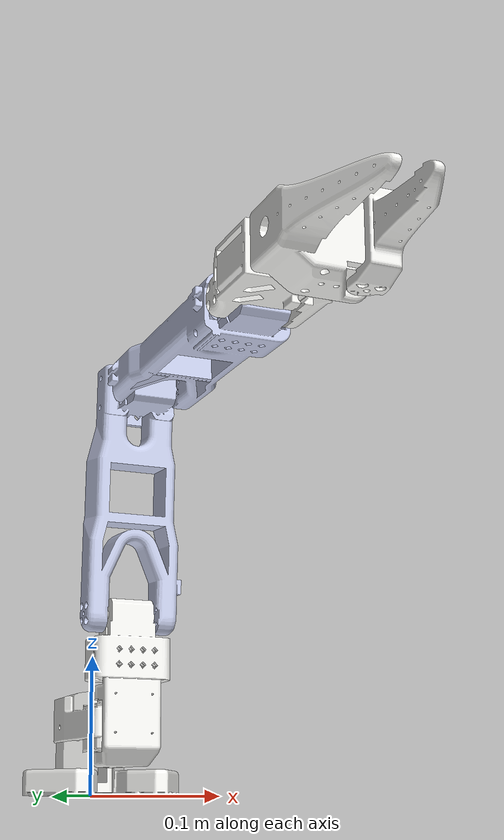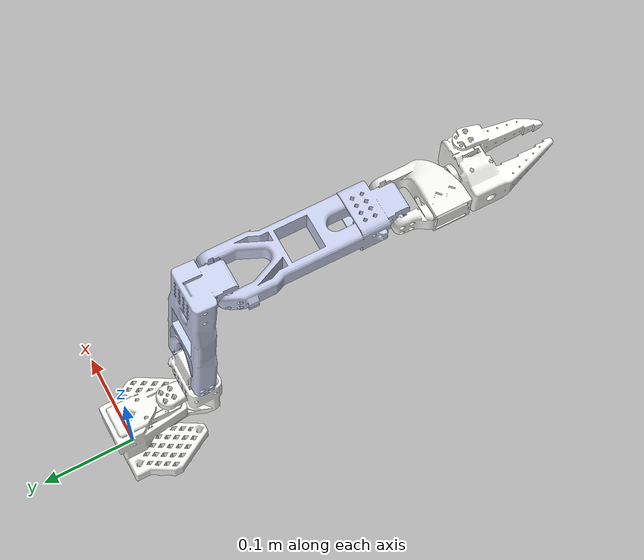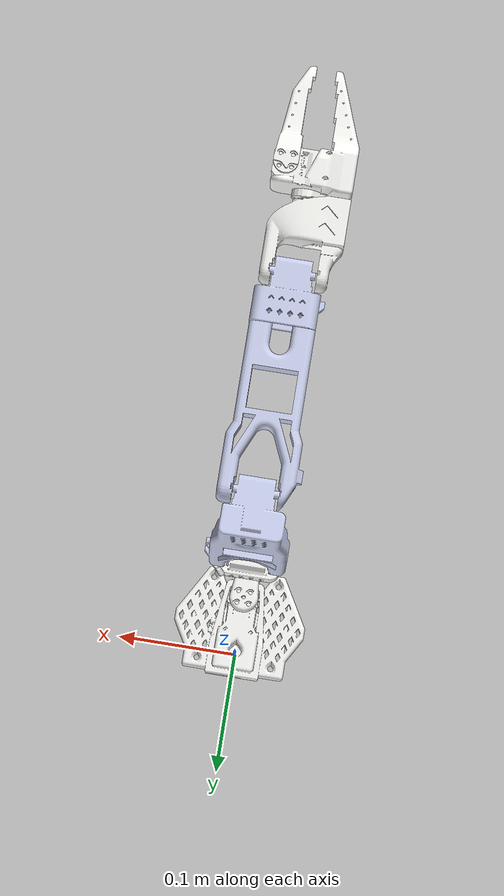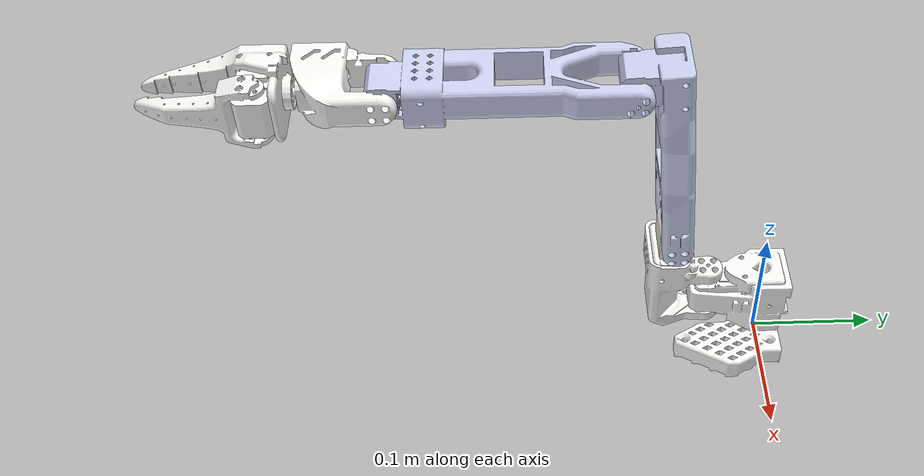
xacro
<?xml version="1.0"?>
<robot xmlns:xacro="http://www.ros.org/wiki/xacro" name="soarm101_40mmUP">
    <xacro:arg name="initial_positions_file" default="initial_positions.yaml" />

    <!-- Import soarm101_40mmUP urdf file -->
    <xacro:include filename="$(find dt_arm_moveit_config)/config/soarm101_40mmUP.urdf.xacro" />

    <!-- Import control_xacro -->
    <xacro:include filename="soarm101_40mmUP.ros2_control.xacro" />

    <xacro:soarm101_40mmUP_ros2_control name="FakeSystem" initial_positions_file="$(arg initial_positions_file)"/>

</robot>

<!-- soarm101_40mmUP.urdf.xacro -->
<robot
  name="soarm101_40mmUP">
  <link
    name="base_link">
    <inertial>
      <origin
        xyz="-0.00013957 -0.018363 0.030861"
        rpy="0 0 0" />
      <mass
        value="0.189" />
      <inertia
        ixx="0.00013624"
        ixy="5.1198E-07"
        ixz="-6.3004E-09"
        iyy="0.00014751"
        iyz="-2.1157E-05"
        izz="0.00017587" />
    </inertial>
    <visual>
      <origin
        xyz="0 0 0"
        rpy="0 0 0" />
      <geometry>
        <mesh
          filename="package://dt_arm_description/meshes/base_link.STL" />
      </geometry>
      <material
        name="">
        <color
          rgba="0.96471 0.96471 0.95294 1" />
      </material>
    </visual>
    <collision>
      <origin
        xyz="0 0 0"
        rpy="0 0 0" />
      <geometry>
        <mesh
          filename="package://dt_arm_description/meshes/base_link.STL" />
      </geometry>
    </collision>
  </link>
  <link
    name="shoulder_link">
    <inertial>
      <origin
        xyz="0.00010759 0.031165 0.02881"
        rpy="0 0 0" />
      <mass
        value="0.11565" />
      <inertia
        ixx="5.9357E-05"
        ixy="8.6054E-08"
        ixz="-3.6155E-07"
        iyy="5.7575E-05"
        iyz="-4.5285E-06"
        izz="3.2083E-05" />
    </inertial>
    <visual>
      <origin
        xyz="0 0 0"
        rpy="0 0 0" />
      <geometry>
        <mesh
          filename="package://dt_arm_description/meshes/shoulder_link.STL" />
      </geometry>
      <material
        name="">
        <color
          rgba="0.96471 0.96471 0.95294 1" />
      </material>
    </visual>
    <collision>
      <origin
        xyz="0 0 0"
        rpy="0 0 0" />
      <geometry>
        <mesh
          filename="package://dt_arm_description/meshes/shoulder_link.STL" />
      </geometry>
    </collision>
  </link>
  <joint
    name="shoulder_pan"
    type="revolute">
    <origin
      xyz="-0.00025 -0.0449 0.046575"
      rpy="0 0 -3.1416" />
    <parent
      link="base_link" />
    <child
      link="shoulder_link" />
    <axis
      xyz="0 0 1" />
    <limit
      lower="-1.9199"
      upper="1.9199"
      effort="10"
      velocity="10" />
  </joint>
  <link
    name="upper_arm_link">
    <inertial>
      <origin
        xyz="-0.096849 0.0026864 -0.0016724"
        rpy="0 0 0" />
      <mass
        value="0.16075" />
      <inertia
        ixx="6.7583E-05"
        ixy="-1.2542E-06"
        ixz="7.5879E-07"
        iyy="0.00015048"
        iyz="-8.3184E-08"
        izz="0.00010571" />
    </inertial>
    <visual>
      <origin
        xyz="0 0 0"
        rpy="0 0 0" />
      <geometry>
        <mesh
          filename="package://dt_arm_description/meshes/upper_arm_link.STL" />
      </geometry>
      <material
        name="">
        <color
          rgba="0.79216 0.81961 0.93333 1" />
      </material>
    </visual>
    <collision>
      <origin
        xyz="0 0 0"
        rpy="0 0 0" />
      <geometry>
        <mesh
          filename="package://dt_arm_description/meshes/upper_arm_link.STL" />
      </geometry>
    </collision>
  </link>
  <joint
    name="shoulder_lift"
    type="revolute">
    <origin
      xyz="0 0.030635 0.07274"
      rpy="-1.5708 1.5045 -1.5708" />
    <parent
      link="shoulder_link" />
    <child
      link="upper_arm_link" />
    <axis
      xyz="0 0 1" />
    <limit
      lower="-1.7453"
      upper="1.9199"
      effort="10"
      velocity="10" />
  </joint>
  <link
    name="lower_arm_link">
    <inertial>
      <origin
        xyz="-0.085694 -0.00028169 0.0030718"
        rpy="0 0 0" />
      <mass
        value="0.11805" />
      <inertia
        ixx="4.9968E-05"
        ixy="8.0458E-07"
        ixz="-1.0032E-06"
        iyy="0.00010573"
        iyz="6.012E-08"
        izz="7.0167E-05" />
    </inertial>
    <visual>
      <origin
        xyz="0 0 0"
        rpy="0 0 0" />
      <geometry>
        <mesh
          filename="package://dt_arm_description/meshes/lower_arm_link.STL" />
      </geometry>
      <material
        name="">
        <color
          rgba="0.79216 0.81961 0.93333 1" />
      </material>
    </visual>
    <collision>
      <origin
        xyz="0 0 0"
        rpy="0 0 0" />
      <geometry>
        <mesh
          filename="package://dt_arm_description/meshes/lower_arm_link.STL" />
      </geometry>
    </collision>
  </link>
  <joint
    name="elbow_flex"
    type="revolute">
    <origin
      xyz="-0.1526 0.027915 0"
      rpy="-3.1416 0 -1.5045" />
    <parent
      link="upper_arm_link" />
    <child
      link="lower_arm_link" />
    <axis
      xyz="0 0 1" />
    <limit
      lower="-1.69"
      upper="1.85"
      effort="10"
      velocity="10" />
  </joint>
  <link
    name="wrist_link">
    <inertial>
      <origin
        xyz="0.03498 -0.00020857 0.0086046"
        rpy="0 0 0" />
      <mass
        value="0.065834" />
      <inertia
        ixx="2.3965E-05"
        ixy="1.1734E-07"
        ixz="-1.9079E-06"
        iyy="3.3384E-05"
        iyz="2.2254E-08"
        izz="1.864E-05" />
    </inertial>
    <visual>
      <origin
        xyz="0 0 0"
        rpy="0 0 0" />
      <geometry>
        <mesh
          filename="package://dt_arm_description/meshes/wrist_link.STL" />
      </geometry>
      <material
        name="">
        <color
          rgba="0.96471 0.96471 0.95294 1" />
      </material>
    </visual>
    <collision>
      <origin
        xyz="0 0 0"
        rpy="0 0 0" />
      <geometry>
        <mesh
          filename="package://dt_arm_description/meshes/wrist_link.STL" />
      </geometry>
    </collision>
  </link>
  <joint
    name="wrist_flex"
    type="revolute">
    <origin
      xyz="-0.17481 -0.0053153 0.0015555"
      rpy="0 3.14159 0" />
    <parent
      link="lower_arm_link" />
    <child
      link="wrist_link" />
    <axis
      xyz="0 0 1" />
    <limit
      lower="-1.6581"
      upper="1.6581"
      effort="10"
      velocity="10" />
  </joint>
  <link
    name="gripper_link">
    <inertial>
      <origin
        xyz="-0.0063006 -0.00054179 0.027703"
        rpy="0 0 0" />
      <mass
        value="0.090145" />
      <inertia
        ixx="4.1215E-05"
        ixy="4.6793E-07"
        ixz="6.8356E-06"
        iyy="4.8738E-05"
        iyz="-1.1223E-07"
        izz="2.8887E-05" />
    </inertial>
    <visual>
      <origin
        xyz="0 0 0"
        rpy="0 0 0" />
      <geometry>
        <mesh
          filename="package://dt_arm_description/meshes/gripper_link.STL" />
      </geometry>
      <material
        name="">
        <color
          rgba="0.96471 0.96471 0.95294 1" />
      </material>
    </visual>
    <collision>
      <origin
        xyz="0 0 0"
        rpy="0 0 0" />
      <geometry>
        <mesh
          filename="package://dt_arm_description/meshes/gripper_link.STL" />
      </geometry>
    </collision>
  </link>
  <joint
    name="wrist_roll"
    type="revolute">
    <origin
      xyz="0.05981 -0.00025321 0.001085"
      rpy="0 1.5708 0" />
    <parent
      link="wrist_link" />
    <child
      link="gripper_link" />
    <axis
      xyz="0 0 1" />
    <limit
      lower="-2.7439"
      upper="2.8412"
      effort="10"
      velocity="10" />
  </joint>
  <link
    name="moving_jaw_so101">
    <inertial>
      <origin
        xyz="-0.0015748 -0.030022 0.00037563"
        rpy="0 0 0" />
      <mass
        value="0.020692" />
      <inertia
        ixx="1.1404E-05"
        ixy="-5.5139E-07"
        ixz="-1.0186E-08"
        iyy="3.2598E-06"
        iyz="-1.8949E-07"
        izz="9.1157E-06" />
    </inertial>
    <visual>
      <origin
        xyz="0 0 0"
        rpy="0 0 0" />
      <geometry>
        <mesh
          filename="package://dt_arm_description/meshes/moving_jaw_so101.STL" />
      </geometry>
      <material
        name="">
        <color
          rgba="0.96471 0.96471 0.95294 1" />
      </material>
    </visual>
    <collision>
      <origin
        xyz="0 0 0"
        rpy="0 0 0" />
      <geometry>
        <mesh
          filename="package://dt_arm_description/meshes/moving_jaw_so101.STL" />
      </geometry>
    </collision>
  </link>
  <joint
    name="gripper"
    type="revolute">
    <origin
      xyz="0.020115 0.00012179 0.024315"
      rpy="-1.5708 0 0" />
    <parent
      link="gripper_link" />
    <child
      link="moving_jaw_so101" />
    <axis
      xyz="0 0 1" />
    <limit
      lower="-0.17453"
      upper="1.7453"
      effort="10"
      velocity="10" />
  </joint>
</robot>
